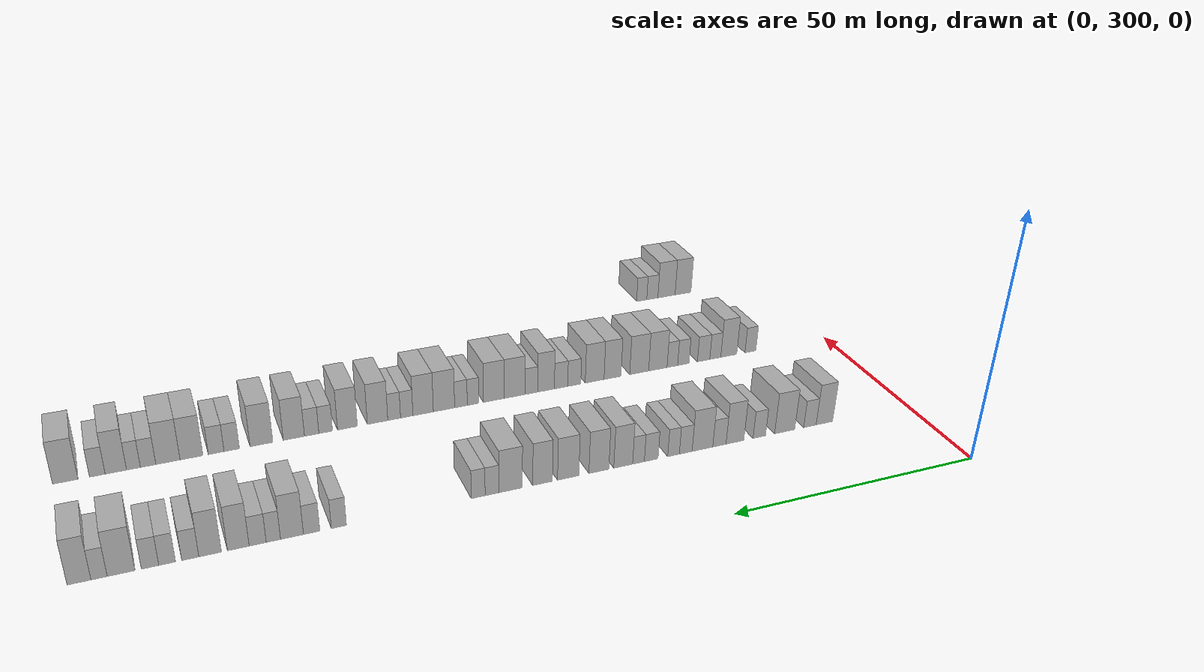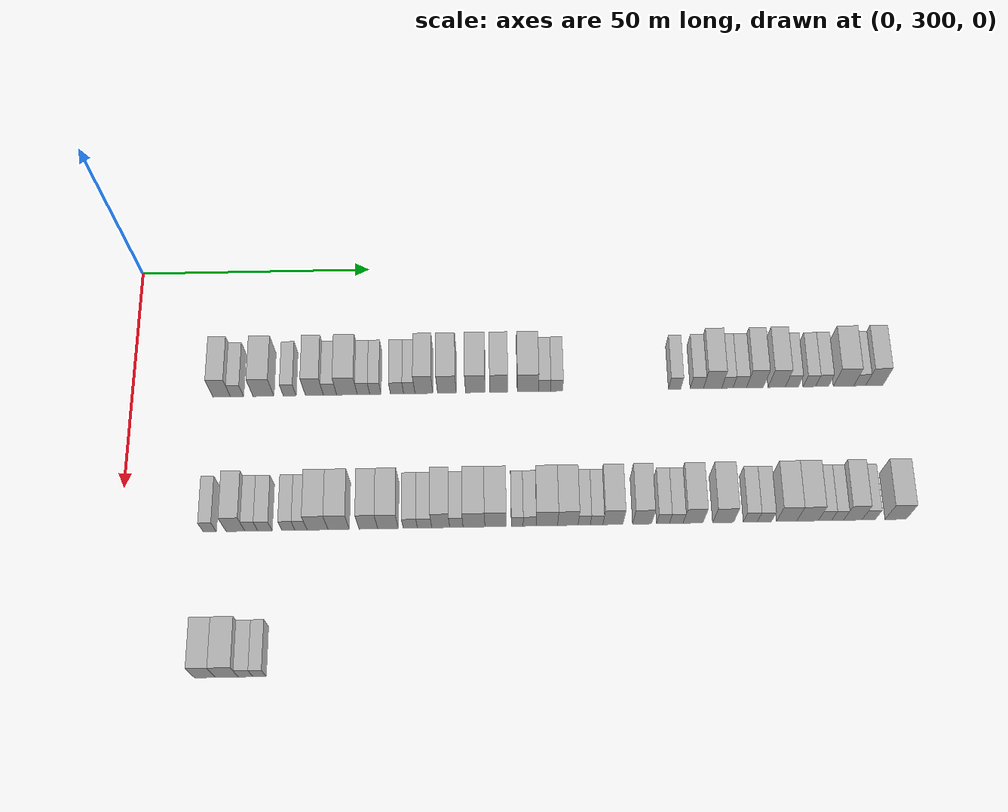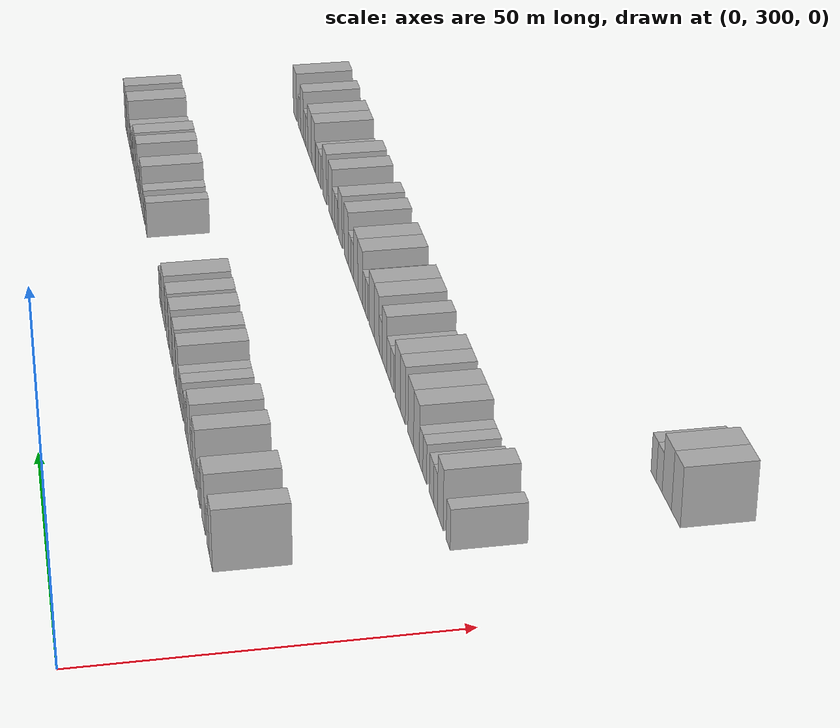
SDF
<sdf version="1.6">
 <world name="default">
  <model name="building_193">
   <static>1</static>
   <pose>25.0000 319.1088 0 0.000000 0.000000 0.000000</pose>
   <link name="link">
    <pose>0 0 4.50 0 0 0</pose>
    <collision name="collision"><geometry><box><size>10.0000 3.7270 9.0000</size></box></geometry></collision>
    <visual name="visual">
     <cast_shadows>0</cast_shadows>
     <geometry><box><size>10.0000 3.7270 9.0000</size></box></geometry>
     <material>
      <script>
       <uri>model://HANNAS_wall/materials/scripts</uri>
       <uri>model://HANNAS_wall/materials/textures</uri>
       <name>vrc/HANNAS_wall</name>
      </script>
     </material>
    </visual>
   </link>
  </model>
  <model name="building_194">
   <static>1</static>
   <pose>25.0000 322.3653 0 0.000000 0.000000 0.000000</pose>
   <link name="link">
    <pose>0 0 3.00 0 0 0</pose>
    <collision name="collision"><geometry><box><size>10.0000 2.7860 6.0000</size></box></geometry></collision>
    <visual name="visual">
     <cast_shadows>0</cast_shadows>
     <geometry><box><size>10.0000 2.7860 6.0000</size></box></geometry>
     <material>
      <script>
       <uri>model://HANNAS_wall/materials/scripts</uri>
       <uri>model://HANNAS_wall/materials/textures</uri>
       <name>vrc/HANNAS_wall</name>
      </script>
     </material>
    </visual>
   </link>
  </model>
  <model name="building_195">
   <static>1</static>
   <pose>25.0000 327.9862 0 0.000000 0.000000 0.000000</pose>
   <link name="link">
    <pose>0 0 4.50 0 0 0</pose>
    <collision name="collision"><geometry><box><size>10.0000 4.4557 9.0000</size></box></geometry></collision>
    <visual name="visual">
     <cast_shadows>0</cast_shadows>
     <geometry><box><size>10.0000 4.4557 9.0000</size></box></geometry>
     <material>
      <script>
       <uri>model://HANNAS_wall/materials/scripts</uri>
       <uri>model://HANNAS_wall/materials/textures</uri>
       <name>vrc/HANNAS_wall</name>
      </script>
     </material>
    </visual>
   </link>
  </model>
  <model name="building_196">
   <static>1</static>
   <pose>25.0000 333.5713 0 0.000000 0.000000 0.000000</pose>
   <link name="link">
    <pose>0 0 3.00 0 0 0</pose>
    <collision name="collision"><geometry><box><size>10.0000 2.7145 6.0000</size></box></geometry></collision>
    <visual name="visual">
     <cast_shadows>0</cast_shadows>
     <geometry><box><size>10.0000 2.7145 6.0000</size></box></geometry>
     <material>
      <script>
       <uri>model://HANNAS_wall/materials/scripts</uri>
       <uri>model://HANNAS_wall/materials/textures</uri>
       <name>vrc/HANNAS_wall</name>
      </script>
     </material>
    </visual>
   </link>
  </model>
  <model name="building_197">
   <static>1</static>
   <pose>25.0000 338.8458 0 0.000000 0.000000 0.000000</pose>
   <link name="link">
    <pose>0 0 4.50 0 0 0</pose>
    <collision name="collision"><geometry><box><size>10.0000 3.8346 9.0000</size></box></geometry></collision>
    <visual name="visual">
     <cast_shadows>0</cast_shadows>
     <geometry><box><size>10.0000 3.8346 9.0000</size></box></geometry>
     <material>
      <script>
       <uri>model://HANNAS_wall/materials/scripts</uri>
       <uri>model://HANNAS_wall/materials/textures</uri>
       <name>vrc/HANNAS_wall</name>
      </script>
     </material>
    </visual>
   </link>
  </model>
  <model name="building_198">
   <static>1</static>
   <pose>25.0000 342.1753 0 0.000000 0.000000 0.000000</pose>
   <link name="link">
    <pose>0 0 3.00 0 0 0</pose>
    <collision name="collision"><geometry><box><size>10.0000 2.8244 6.0000</size></box></geometry></collision>
    <visual name="visual">
     <cast_shadows>0</cast_shadows>
     <geometry><box><size>10.0000 2.8244 6.0000</size></box></geometry>
     <material>
      <script>
       <uri>model://HANNAS_wall/materials/scripts</uri>
       <uri>model://HANNAS_wall/materials/textures</uri>
       <name>vrc/HANNAS_wall</name>
      </script>
     </material>
    </visual>
   </link>
  </model>
  <model name="building_199">
   <static>1</static>
   <pose>25.0000 345.7808 0 0.000000 0.000000 0.000000</pose>
   <link name="link">
    <pose>0 0 4.50 0 0 0</pose>
    <collision name="collision"><geometry><box><size>10.0000 4.3867 9.0000</size></box></geometry></collision>
    <visual name="visual">
     <cast_shadows>0</cast_shadows>
     <geometry><box><size>10.0000 4.3867 9.0000</size></box></geometry>
     <material>
      <script>
       <uri>model://HANNAS_wall/materials/scripts</uri>
       <uri>model://HANNAS_wall/materials/textures</uri>
       <name>vrc/HANNAS_wall</name>
      </script>
     </material>
    </visual>
   </link>
  </model>
  <model name="building_200">
   <static>1</static>
   <pose>25.0000 349.3085 0 0.000000 0.000000 0.000000</pose>
   <link name="link">
    <pose>0 0 3.00 0 0 0</pose>
    <collision name="collision"><geometry><box><size>10.0000 2.6686 6.0000</size></box></geometry></collision>
    <visual name="visual">
     <cast_shadows>0</cast_shadows>
     <geometry><box><size>10.0000 2.6686 6.0000</size></box></geometry>
     <material>
      <script>
       <uri>model://HANNAS_wall/materials/scripts</uri>
       <uri>model://HANNAS_wall/materials/textures</uri>
       <name>vrc/HANNAS_wall</name>
      </script>
     </material>
    </visual>
   </link>
  </model>
  <model name="building_201">
   <static>1</static>
   <pose>25.0000 351.8510 0 0.000000 0.000000 0.000000</pose>
   <link name="link">
    <pose>0 0 3.00 0 0 0</pose>
    <collision name="collision"><geometry><box><size>10.0000 2.4166 6.0000</size></box></geometry></collision>
    <visual name="visual">
     <cast_shadows>0</cast_shadows>
     <geometry><box><size>10.0000 2.4166 6.0000</size></box></geometry>
     <material>
      <script>
       <uri>model://HANNAS_wall/materials/scripts</uri>
       <uri>model://HANNAS_wall/materials/textures</uri>
       <name>vrc/HANNAS_wall</name>
      </script>
     </material>
    </visual>
   </link>
  </model>
  <model name="building_202">
   <static>1</static>
   <pose>25.0000 356.4657 0 0.000000 0.000000 0.000000</pose>
   <link name="link">
    <pose>0 0 3.00 0 0 0</pose>
    <collision name="collision"><geometry><box><size>10.0000 2.8127 6.0000</size></box></geometry></collision>
    <visual name="visual">
     <cast_shadows>0</cast_shadows>
     <geometry><box><size>10.0000 2.8127 6.0000</size></box></geometry>
     <material>
      <script>
       <uri>model://HANNAS_wall/materials/scripts</uri>
       <uri>model://HANNAS_wall/materials/textures</uri>
       <name>vrc/HANNAS_wall</name>
      </script>
     </material>
    </visual>
   </link>
  </model>
  <model name="building_203">
   <static>1</static>
   <pose>25.0000 359.0736 0 0.000000 0.000000 0.000000</pose>
   <link name="link">
    <pose>0 0 3.00 0 0 0</pose>
    <collision name="collision"><geometry><box><size>10.0000 2.4030 6.0000</size></box></geometry></collision>
    <visual name="visual">
     <cast_shadows>0</cast_shadows>
     <geometry><box><size>10.0000 2.4030 6.0000</size></box></geometry>
     <material>
      <script>
       <uri>model://HANNAS_wall/materials/scripts</uri>
       <uri>model://HANNAS_wall/materials/textures</uri>
       <name>vrc/HANNAS_wall</name>
      </script>
     </material>
    </visual>
   </link>
  </model>
  <model name="building_204">
   <static>1</static>
   <pose>25.0000 362.1849 0 0.000000 0.000000 0.000000</pose>
   <link name="link">
    <pose>0 0 4.50 0 0 0</pose>
    <collision name="collision"><geometry><box><size>10.0000 3.8196 9.0000</size></box></geometry></collision>
    <visual name="visual">
     <cast_shadows>0</cast_shadows>
     <geometry><box><size>10.0000 3.8196 9.0000</size></box></geometry>
     <material>
      <script>
       <uri>model://HANNAS_wall/materials/scripts</uri>
       <uri>model://HANNAS_wall/materials/textures</uri>
       <name>vrc/HANNAS_wall</name>
      </script>
     </material>
    </visual>
   </link>
  </model>
  <model name="building_205">
   <static>1</static>
   <pose>25.0000 367.0878 0 0.000000 0.000000 0.000000</pose>
   <link name="link">
    <pose>0 0 4.50 0 0 0</pose>
    <collision name="collision"><geometry><box><size>10.0000 3.9863 9.0000</size></box></geometry></collision>
    <visual name="visual">
     <cast_shadows>0</cast_shadows>
     <geometry><box><size>10.0000 3.9863 9.0000</size></box></geometry>
     <material>
      <script>
       <uri>model://HANNAS_wall/materials/scripts</uri>
       <uri>model://HANNAS_wall/materials/textures</uri>
       <name>vrc/HANNAS_wall</name>
      </script>
     </material>
    </visual>
   </link>
  </model>
  <model name="building_206">
   <static>1</static>
   <pose>25.0000 373.1792 0 0.000000 0.000000 0.000000</pose>
   <link name="link">
    <pose>0 0 4.50 0 0 0</pose>
    <collision name="collision"><geometry><box><size>10.0000 4.1966 9.0000</size></box></geometry></collision>
    <visual name="visual">
     <cast_shadows>0</cast_shadows>
     <geometry><box><size>10.0000 4.1966 9.0000</size></box></geometry>
     <material>
      <script>
       <uri>model://HANNAS_wall/materials/scripts</uri>
       <uri>model://HANNAS_wall/materials/textures</uri>
       <name>vrc/HANNAS_wall</name>
      </script>
     </material>
    </visual>
   </link>
  </model>
  <model name="building_207">
   <static>1</static>
   <pose>25.0000 378.1912 0 0.000000 0.000000 0.000000</pose>
   <link name="link">
    <pose>0 0 4.50 0 0 0</pose>
    <collision name="collision"><geometry><box><size>10.0000 3.8272 9.0000</size></box></geometry></collision>
    <visual name="visual">
     <cast_shadows>0</cast_shadows>
     <geometry><box><size>10.0000 3.8272 9.0000</size></box></geometry>
     <material>
      <script>
       <uri>model://HANNAS_wall/materials/scripts</uri>
       <uri>model://HANNAS_wall/materials/textures</uri>
       <name>vrc/HANNAS_wall</name>
      </script>
     </material>
    </visual>
   </link>
  </model>
  <model name="building_208">
   <static>1</static>
   <pose>25.0000 384.3517 0 0.000000 0.000000 0.000000</pose>
   <link name="link">
    <pose>0 0 4.50 0 0 0</pose>
    <collision name="collision"><geometry><box><size>10.0000 4.4937 9.0000</size></box></geometry></collision>
    <visual name="visual">
     <cast_shadows>0</cast_shadows>
     <geometry><box><size>10.0000 4.4937 9.0000</size></box></geometry>
     <material>
      <script>
       <uri>model://HANNAS_wall/materials/scripts</uri>
       <uri>model://HANNAS_wall/materials/textures</uri>
       <name>vrc/HANNAS_wall</name>
      </script>
     </material>
    </visual>
   </link>
  </model>
  <model name="building_209">
   <static>1</static>
   <pose>25.0000 387.8900 0 0.000000 0.000000 0.000000</pose>
   <link name="link">
    <pose>0 0 3.00 0 0 0</pose>
    <collision name="collision"><geometry><box><size>10.0000 2.5828 6.0000</size></box></geometry></collision>
    <visual name="visual">
     <cast_shadows>0</cast_shadows>
     <geometry><box><size>10.0000 2.5828 6.0000</size></box></geometry>
     <material>
      <script>
       <uri>model://HANNAS_wall/materials/scripts</uri>
       <uri>model://HANNAS_wall/materials/textures</uri>
       <name>vrc/HANNAS_wall</name>
      </script>
     </material>
    </visual>
   </link>
  </model>
  <model name="building_210">
   <static>1</static>
   <pose>25.0000 390.4834 0 0.000000 0.000000 0.000000</pose>
   <link name="link">
    <pose>0 0 3.00 0 0 0</pose>
    <collision name="collision"><geometry><box><size>10.0000 2.6040 6.0000</size></box></geometry></collision>
    <visual name="visual">
     <cast_shadows>0</cast_shadows>
     <geometry><box><size>10.0000 2.6040 6.0000</size></box></geometry>
     <material>
      <script>
       <uri>model://HANNAS_wall/materials/scripts</uri>
       <uri>model://HANNAS_wall/materials/textures</uri>
       <name>vrc/HANNAS_wall</name>
      </script>
     </material>
    </visual>
   </link>
  </model>
  <model name="building_211">
   <static>1</static>
   <pose>25.0000 415.7562 0 0.000000 0.000000 0.000000</pose>
   <link name="link">
    <pose>0 0 3.00 0 0 0</pose>
    <collision name="collision"><geometry><box><size>10.0000 2.6472 6.0000</size></box></geometry></collision>
    <visual name="visual">
     <cast_shadows>0</cast_shadows>
     <geometry><box><size>10.0000 2.6472 6.0000</size></box></geometry>
     <material>
      <script>
       <uri>model://HANNAS_wall/materials/scripts</uri>
       <uri>model://HANNAS_wall/materials/textures</uri>
       <name>vrc/HANNAS_wall</name>
      </script>
     </material>
    </visual>
   </link>
  </model>
  <model name="building_212">
   <static>1</static>
   <pose>25.0000 420.4960 0 0.000000 0.000000 0.000000</pose>
   <link name="link">
    <pose>0 0 3.00 0 0 0</pose>
    <collision name="collision"><geometry><box><size>10.0000 2.8325 6.0000</size></box></geometry></collision>
    <visual name="visual">
     <cast_shadows>0</cast_shadows>
     <geometry><box><size>10.0000 2.8325 6.0000</size></box></geometry>
     <material>
      <script>
       <uri>model://HANNAS_wall/materials/scripts</uri>
       <uri>model://HANNAS_wall/materials/textures</uri>
       <name>vrc/HANNAS_wall</name>
      </script>
     </material>
    </visual>
   </link>
  </model>
  <model name="building_213">
   <static>1</static>
   <pose>25.0000 423.8719 0 0.000000 0.000000 0.000000</pose>
   <link name="link">
    <pose>0 0 4.50 0 0 0</pose>
    <collision name="collision"><geometry><box><size>10.0000 3.9193 9.0000</size></box></geometry></collision>
    <visual name="visual">
     <cast_shadows>0</cast_shadows>
     <geometry><box><size>10.0000 3.9193 9.0000</size></box></geometry>
     <material>
      <script>
       <uri>model://HANNAS_wall/materials/scripts</uri>
       <uri>model://HANNAS_wall/materials/textures</uri>
       <name>vrc/HANNAS_wall</name>
      </script>
     </material>
    </visual>
   </link>
  </model>
  <model name="building_214">
   <static>1</static>
   <pose>25.0000 427.0435 0 0.000000 0.000000 0.000000</pose>
   <link name="link">
    <pose>0 0 3.00 0 0 0</pose>
    <collision name="collision"><geometry><box><size>10.0000 2.4238 6.0000</size></box></geometry></collision>
    <visual name="visual">
     <cast_shadows>0</cast_shadows>
     <geometry><box><size>10.0000 2.4238 6.0000</size></box></geometry>
     <material>
      <script>
       <uri>model://HANNAS_wall/materials/scripts</uri>
       <uri>model://HANNAS_wall/materials/textures</uri>
       <name>vrc/HANNAS_wall</name>
      </script>
     </material>
    </visual>
   </link>
  </model>
  <model name="building_215">
   <static>1</static>
   <pose>25.0000 429.6931 0 0.000000 0.000000 0.000000</pose>
   <link name="link">
    <pose>0 0 3.00 0 0 0</pose>
    <collision name="collision"><geometry><box><size>10.0000 2.8754 6.0000</size></box></geometry></collision>
    <visual name="visual">
     <cast_shadows>0</cast_shadows>
     <geometry><box><size>10.0000 2.8754 6.0000</size></box></geometry>
     <material>
      <script>
       <uri>model://HANNAS_wall/materials/scripts</uri>
       <uri>model://HANNAS_wall/materials/textures</uri>
       <name>vrc/HANNAS_wall</name>
      </script>
     </material>
    </visual>
   </link>
  </model>
  <model name="building_216">
   <static>1</static>
   <pose>25.0000 432.9404 0 0.000000 0.000000 0.000000</pose>
   <link name="link">
    <pose>0 0 4.50 0 0 0</pose>
    <collision name="collision"><geometry><box><size>10.0000 3.6192 9.0000</size></box></geometry></collision>
    <visual name="visual">
     <cast_shadows>0</cast_shadows>
     <geometry><box><size>10.0000 3.6192 9.0000</size></box></geometry>
     <material>
      <script>
       <uri>model://HANNAS_wall/materials/scripts</uri>
       <uri>model://HANNAS_wall/materials/textures</uri>
       <name>vrc/HANNAS_wall</name>
      </script>
     </material>
    </visual>
   </link>
  </model>
  <model name="building_217">
   <static>1</static>
   <pose>25.0000 437.6071 0 0.000000 0.000000 0.000000</pose>
   <link name="link">
    <pose>0 0 4.50 0 0 0</pose>
    <collision name="collision"><geometry><box><size>10.0000 3.7142 9.0000</size></box></geometry></collision>
    <visual name="visual">
     <cast_shadows>0</cast_shadows>
     <geometry><box><size>10.0000 3.7142 9.0000</size></box></geometry>
     <material>
      <script>
       <uri>model://HANNAS_wall/materials/scripts</uri>
       <uri>model://HANNAS_wall/materials/textures</uri>
       <name>vrc/HANNAS_wall</name>
      </script>
     </material>
    </visual>
   </link>
  </model>
  <model name="building_218">
   <static>1</static>
   <pose>25.0000 440.8571 0 0.000000 0.000000 0.000000</pose>
   <link name="link">
    <pose>0 0 3.00 0 0 0</pose>
    <collision name="collision"><geometry><box><size>10.0000 2.7859 6.0000</size></box></geometry></collision>
    <visual name="visual">
     <cast_shadows>0</cast_shadows>
     <geometry><box><size>10.0000 2.7859 6.0000</size></box></geometry>
     <material>
      <script>
       <uri>model://HANNAS_wall/materials/scripts</uri>
       <uri>model://HANNAS_wall/materials/textures</uri>
       <name>vrc/HANNAS_wall</name>
      </script>
     </material>
    </visual>
   </link>
  </model>
  <model name="building_219">
   <static>1</static>
   <pose>25.0000 444.5986 0 0.000000 0.000000 0.000000</pose>
   <link name="link">
    <pose>0 0 3.00 0 0 0</pose>
    <collision name="collision"><geometry><box><size>10.0000 2.6970 6.0000</size></box></geometry></collision>
    <visual name="visual">
     <cast_shadows>0</cast_shadows>
     <geometry><box><size>10.0000 2.6970 6.0000</size></box></geometry>
     <material>
      <script>
       <uri>model://HANNAS_wall/materials/scripts</uri>
       <uri>model://HANNAS_wall/materials/textures</uri>
       <name>vrc/HANNAS_wall</name>
      </script>
     </material>
    </visual>
   </link>
  </model>
  <model name="building_220">
   <static>1</static>
   <pose>25.0000 447.3444 0 0.000000 0.000000 0.000000</pose>
   <link name="link">
    <pose>0 0 3.00 0 0 0</pose>
    <collision name="collision"><geometry><box><size>10.0000 2.7946 6.0000</size></box></geometry></collision>
    <visual name="visual">
     <cast_shadows>0</cast_shadows>
     <geometry><box><size>10.0000 2.7946 6.0000</size></box></geometry>
     <material>
      <script>
       <uri>model://HANNAS_wall/materials/scripts</uri>
       <uri>model://HANNAS_wall/materials/textures</uri>
       <name>vrc/HANNAS_wall</name>
      </script>
     </material>
    </visual>
   </link>
  </model>
  <model name="building_221">
   <static>1</static>
   <pose>25.0000 451.9371 0 0.000000 0.000000 0.000000</pose>
   <link name="link">
    <pose>0 0 4.50 0 0 0</pose>
    <collision name="collision"><geometry><box><size>10.0000 4.3908 9.0000</size></box></geometry></collision>
    <visual name="visual">
     <cast_shadows>0</cast_shadows>
     <geometry><box><size>10.0000 4.3908 9.0000</size></box></geometry>
     <material>
      <script>
       <uri>model://HANNAS_wall/materials/scripts</uri>
       <uri>model://HANNAS_wall/materials/textures</uri>
       <name>vrc/HANNAS_wall</name>
      </script>
     </material>
    </visual>
   </link>
  </model>
  <model name="building_222">
   <static>1</static>
   <pose>25.0000 455.4033 0 0.000000 0.000000 0.000000</pose>
   <link name="link">
    <pose>0 0 3.00 0 0 0</pose>
    <collision name="collision"><geometry><box><size>10.0000 2.5416 6.0000</size></box></geometry></collision>
    <visual name="visual">
     <cast_shadows>0</cast_shadows>
     <geometry><box><size>10.0000 2.5416 6.0000</size></box></geometry>
     <material>
      <script>
       <uri>model://HANNAS_wall/materials/scripts</uri>
       <uri>model://HANNAS_wall/materials/textures</uri>
       <name>vrc/HANNAS_wall</name>
      </script>
     </material>
    </visual>
   </link>
  </model>
  <model name="building_223">
   <static>1</static>
   <pose>25.0000 458.5246 0 0.000000 0.000000 0.000000</pose>
   <link name="link">
    <pose>0 0 4.50 0 0 0</pose>
    <collision name="collision"><geometry><box><size>10.0000 3.7010 9.0000</size></box></geometry></collision>
    <visual name="visual">
     <cast_shadows>0</cast_shadows>
     <geometry><box><size>10.0000 3.7010 9.0000</size></box></geometry>
     <material>
      <script>
       <uri>model://HANNAS_wall/materials/scripts</uri>
       <uri>model://HANNAS_wall/materials/textures</uri>
       <name>vrc/HANNAS_wall</name>
      </script>
     </material>
    </visual>
   </link>
  </model>
  <model name="building_414">
   <static>1</static>
   <pose>55.0000 318.4285 0 0.000000 0.000000 0.000000</pose>
   <link name="link">
    <pose>0 0 3.00 0 0 0</pose>
    <collision name="collision"><geometry><box><size>10.0000 2.6645 6.0000</size></box></geometry></collision>
    <visual name="visual">
     <cast_shadows>0</cast_shadows>
     <geometry><box><size>10.0000 2.6645 6.0000</size></box></geometry>
     <material>
      <script>
       <uri>model://HANNAS_wall/materials/scripts</uri>
       <uri>model://HANNAS_wall/materials/textures</uri>
       <name>vrc/HANNAS_wall</name>
      </script>
     </material>
    </visual>
   </link>
  </model>
  <model name="building_415">
   <static>1</static>
   <pose>55.0000 323.6907 0 0.000000 0.000000 0.000000</pose>
   <link name="link">
    <pose>0 0 4.50 0 0 0</pose>
    <collision name="collision"><geometry><box><size>10.0000 3.8598 9.0000</size></box></geometry></collision>
    <visual name="visual">
     <cast_shadows>0</cast_shadows>
     <geometry><box><size>10.0000 3.8598 9.0000</size></box></geometry>
     <material>
      <script>
       <uri>model://HANNAS_wall/materials/scripts</uri>
       <uri>model://HANNAS_wall/materials/textures</uri>
       <name>vrc/HANNAS_wall</name>
      </script>
     </material>
    </visual>
   </link>
  </model>
  <model name="building_416">
   <static>1</static>
   <pose>55.0000 326.9384 0 0.000000 0.000000 0.000000</pose>
   <link name="link">
    <pose>0 0 3.00 0 0 0</pose>
    <collision name="collision"><geometry><box><size>10.0000 2.6358 6.0000</size></box></geometry></collision>
    <visual name="visual">
     <cast_shadows>0</cast_shadows>
     <geometry><box><size>10.0000 2.6358 6.0000</size></box></geometry>
     <material>
      <script>
       <uri>model://HANNAS_wall/materials/scripts</uri>
       <uri>model://HANNAS_wall/materials/textures</uri>
       <name>vrc/HANNAS_wall</name>
      </script>
     </material>
    </visual>
   </link>
  </model>
  <model name="building_417">
   <static>1</static>
   <pose>55.0000 329.7284 0 0.000000 0.000000 0.000000</pose>
   <link name="link">
    <pose>0 0 3.00 0 0 0</pose>
    <collision name="collision"><geometry><box><size>10.0000 2.9442 6.0000</size></box></geometry></collision>
    <visual name="visual">
     <cast_shadows>0</cast_shadows>
     <geometry><box><size>10.0000 2.9442 6.0000</size></box></geometry>
     <material>
      <script>
       <uri>model://HANNAS_wall/materials/scripts</uri>
       <uri>model://HANNAS_wall/materials/textures</uri>
       <name>vrc/HANNAS_wall</name>
      </script>
     </material>
    </visual>
   </link>
  </model>
  <model name="building_418">
   <static>1</static>
   <pose>55.0000 334.5457 0 0.000000 0.000000 0.000000</pose>
   <link name="link">
    <pose>0 0 3.00 0 0 0</pose>
    <collision name="collision"><geometry><box><size>10.0000 2.6904 6.0000</size></box></geometry></collision>
    <visual name="visual">
     <cast_shadows>0</cast_shadows>
     <geometry><box><size>10.0000 2.6904 6.0000</size></box></geometry>
     <material>
      <script>
       <uri>model://HANNAS_wall/materials/scripts</uri>
       <uri>model://HANNAS_wall/materials/textures</uri>
       <name>vrc/HANNAS_wall</name>
      </script>
     </material>
    </visual>
   </link>
  </model>
  <model name="building_419">
   <static>1</static>
   <pose>55.0000 337.1266 0 0.000000 0.000000 0.000000</pose>
   <link name="link">
    <pose>0 0 3.00 0 0 0</pose>
    <collision name="collision"><geometry><box><size>10.0000 2.4715 6.0000</size></box></geometry></collision>
    <visual name="visual">
     <cast_shadows>0</cast_shadows>
     <geometry><box><size>10.0000 2.4715 6.0000</size></box></geometry>
     <material>
      <script>
       <uri>model://HANNAS_wall/materials/scripts</uri>
       <uri>model://HANNAS_wall/materials/textures</uri>
       <name>vrc/HANNAS_wall</name>
      </script>
     </material>
    </visual>
   </link>
  </model>
  <model name="building_420">
   <static>1</static>
   <pose>55.0000 340.5083 0 0.000000 0.000000 0.000000</pose>
   <link name="link">
    <pose>0 0 4.50 0 0 0</pose>
    <collision name="collision"><geometry><box><size>10.0000 4.2918 9.0000</size></box></geometry></collision>
    <visual name="visual">
     <cast_shadows>0</cast_shadows>
     <geometry><box><size>10.0000 4.2918 9.0000</size></box></geometry>
     <material>
      <script>
       <uri>model://HANNAS_wall/materials/scripts</uri>
       <uri>model://HANNAS_wall/materials/textures</uri>
       <name>vrc/HANNAS_wall</name>
      </script>
     </material>
    </visual>
   </link>
  </model>
  <model name="building_421">
   <static>1</static>
   <pose>55.0000 344.8352 0 0.000000 0.000000 0.000000</pose>
   <link name="link">
    <pose>0 0 4.50 0 0 0</pose>
    <collision name="collision"><geometry><box><size>10.0000 4.3620 9.0000</size></box></geometry></collision>
    <visual name="visual">
     <cast_shadows>0</cast_shadows>
     <geometry><box><size>10.0000 4.3620 9.0000</size></box></geometry>
     <material>
      <script>
       <uri>model://HANNAS_wall/materials/scripts</uri>
       <uri>model://HANNAS_wall/materials/textures</uri>
       <name>vrc/HANNAS_wall</name>
      </script>
     </material>
    </visual>
   </link>
  </model>
  <model name="building_422">
   <static>1</static>
   <pose>55.0000 350.9352 0 0.000000 0.000000 0.000000</pose>
   <link name="link">
    <pose>0 0 4.50 0 0 0</pose>
    <collision name="collision"><geometry><box><size>10.0000 3.8379 9.0000</size></box></geometry></collision>
    <visual name="visual">
     <cast_shadows>0</cast_shadows>
     <geometry><box><size>10.0000 3.8379 9.0000</size></box></geometry>
     <material>
      <script>
       <uri>model://HANNAS_wall/materials/scripts</uri>
       <uri>model://HANNAS_wall/materials/textures</uri>
       <name>vrc/HANNAS_wall</name>
      </script>
     </material>
    </visual>
   </link>
  </model>
  <model name="building_423">
   <static>1</static>
   <pose>55.0000 354.9702 0 0.000000 0.000000 0.000000</pose>
   <link name="link">
    <pose>0 0 4.50 0 0 0</pose>
    <collision name="collision"><geometry><box><size>10.0000 4.2323 9.0000</size></box></geometry></collision>
    <visual name="visual">
     <cast_shadows>0</cast_shadows>
     <geometry><box><size>10.0000 4.2323 9.0000</size></box></geometry>
     <material>
      <script>
       <uri>model://HANNAS_wall/materials/scripts</uri>
       <uri>model://HANNAS_wall/materials/textures</uri>
       <name>vrc/HANNAS_wall</name>
      </script>
     </material>
    </visual>
   </link>
  </model>
  <model name="building_424">
   <static>1</static>
   <pose>55.0000 359.5411 0 0.000000 0.000000 0.000000</pose>
   <link name="link">
    <pose>0 0 3.00 0 0 0</pose>
    <collision name="collision"><geometry><box><size>10.0000 2.9094 6.0000</size></box></geometry></collision>
    <visual name="visual">
     <cast_shadows>0</cast_shadows>
     <geometry><box><size>10.0000 2.9094 6.0000</size></box></geometry>
     <material>
      <script>
       <uri>model://HANNAS_wall/materials/scripts</uri>
       <uri>model://HANNAS_wall/materials/textures</uri>
       <name>vrc/HANNAS_wall</name>
      </script>
     </material>
    </visual>
   </link>
  </model>
  <model name="building_425">
   <static>1</static>
   <pose>55.0000 362.4667 0 0.000000 0.000000 0.000000</pose>
   <link name="link">
    <pose>0 0 3.00 0 0 0</pose>
    <collision name="collision"><geometry><box><size>10.0000 2.9417 6.0000</size></box></geometry></collision>
    <visual name="visual">
     <cast_shadows>0</cast_shadows>
     <geometry><box><size>10.0000 2.9417 6.0000</size></box></geometry>
     <material>
      <script>
       <uri>model://HANNAS_wall/materials/scripts</uri>
       <uri>model://HANNAS_wall/materials/textures</uri>
       <name>vrc/HANNAS_wall</name>
      </script>
     </material>
    </visual>
   </link>
  </model>
  <model name="building_426">
   <static>1</static>
   <pose>55.0000 365.7749 0 0.000000 0.000000 0.000000</pose>
   <link name="link">
    <pose>0 0 4.50 0 0 0</pose>
    <collision name="collision"><geometry><box><size>10.0000 3.6748 9.0000</size></box></geometry></collision>
    <visual name="visual">
     <cast_shadows>0</cast_shadows>
     <geometry><box><size>10.0000 3.6748 9.0000</size></box></geometry>
     <material>
      <script>
       <uri>model://HANNAS_wall/materials/scripts</uri>
       <uri>model://HANNAS_wall/materials/textures</uri>
       <name>vrc/HANNAS_wall</name>
      </script>
     </material>
    </visual>
   </link>
  </model>
  <model name="building_427">
   <static>1</static>
   <pose>55.0000 368.9834 0 0.000000 0.000000 0.000000</pose>
   <link name="link">
    <pose>0 0 3.00 0 0 0</pose>
    <collision name="collision"><geometry><box><size>10.0000 2.7420 6.0000</size></box></geometry></collision>
    <visual name="visual">
     <cast_shadows>0</cast_shadows>
     <geometry><box><size>10.0000 2.7420 6.0000</size></box></geometry>
     <material>
      <script>
       <uri>model://HANNAS_wall/materials/scripts</uri>
       <uri>model://HANNAS_wall/materials/textures</uri>
       <name>vrc/HANNAS_wall</name>
      </script>
     </material>
    </visual>
   </link>
  </model>
  <model name="building_428">
   <static>1</static>
   <pose>55.0000 372.6005 0 0.000000 0.000000 0.000000</pose>
   <link name="link">
    <pose>0 0 4.50 0 0 0</pose>
    <collision name="collision"><geometry><box><size>10.0000 4.4923 9.0000</size></box></geometry></collision>
    <visual name="visual">
     <cast_shadows>0</cast_shadows>
     <geometry><box><size>10.0000 4.4923 9.0000</size></box></geometry>
     <material>
      <script>
       <uri>model://HANNAS_wall/materials/scripts</uri>
       <uri>model://HANNAS_wall/materials/textures</uri>
       <name>vrc/HANNAS_wall</name>
      </script>
     </material>
    </visual>
   </link>
  </model>
  <model name="building_429">
   <static>1</static>
   <pose>55.0000 377.0536 0 0.000000 0.000000 0.000000</pose>
   <link name="link">
    <pose>0 0 4.50 0 0 0</pose>
    <collision name="collision"><geometry><box><size>10.0000 4.4139 9.0000</size></box></geometry></collision>
    <visual name="visual">
     <cast_shadows>0</cast_shadows>
     <geometry><box><size>10.0000 4.4139 9.0000</size></box></geometry>
     <material>
      <script>
       <uri>model://HANNAS_wall/materials/scripts</uri>
       <uri>model://HANNAS_wall/materials/textures</uri>
       <name>vrc/HANNAS_wall</name>
      </script>
     </material>
    </visual>
   </link>
  </model>
  <model name="building_430">
   <static>1</static>
   <pose>55.0000 381.4723 0 0.000000 0.000000 0.000000</pose>
   <link name="link">
    <pose>0 0 3.00 0 0 0</pose>
    <collision name="collision"><geometry><box><size>10.0000 2.4236 6.0000</size></box></geometry></collision>
    <visual name="visual">
     <cast_shadows>0</cast_shadows>
     <geometry><box><size>10.0000 2.4236 6.0000</size></box></geometry>
     <material>
      <script>
       <uri>model://HANNAS_wall/materials/scripts</uri>
       <uri>model://HANNAS_wall/materials/textures</uri>
       <name>vrc/HANNAS_wall</name>
      </script>
     </material>
    </visual>
   </link>
  </model>
  <model name="building_431">
   <static>1</static>
   <pose>55.0000 384.0136 0 0.000000 0.000000 0.000000</pose>
   <link name="link">
    <pose>0 0 3.00 0 0 0</pose>
    <collision name="collision"><geometry><box><size>10.0000 2.6590 6.0000</size></box></geometry></collision>
    <visual name="visual">
     <cast_shadows>0</cast_shadows>
     <geometry><box><size>10.0000 2.6590 6.0000</size></box></geometry>
     <material>
      <script>
       <uri>model://HANNAS_wall/materials/scripts</uri>
       <uri>model://HANNAS_wall/materials/textures</uri>
       <name>vrc/HANNAS_wall</name>
      </script>
     </material>
    </visual>
   </link>
  </model>
  <model name="building_432">
   <static>1</static>
   <pose>55.0000 387.5551 0 0.000000 0.000000 0.000000</pose>
   <link name="link">
    <pose>0 0 4.50 0 0 0</pose>
    <collision name="collision"><geometry><box><size>10.0000 4.4239 9.0000</size></box></geometry></collision>
    <visual name="visual">
     <cast_shadows>0</cast_shadows>
     <geometry><box><size>10.0000 4.4239 9.0000</size></box></geometry>
     <material>
      <script>
       <uri>model://HANNAS_wall/materials/scripts</uri>
       <uri>model://HANNAS_wall/materials/textures</uri>
       <name>vrc/HANNAS_wall</name>
      </script>
     </material>
    </visual>
   </link>
  </model>
  <model name="building_433">
   <static>1</static>
   <pose>55.0000 391.8734 0 0.000000 0.000000 0.000000</pose>
   <link name="link">
    <pose>0 0 4.50 0 0 0</pose>
    <collision name="collision"><geometry><box><size>10.0000 4.2128 9.0000</size></box></geometry></collision>
    <visual name="visual">
     <cast_shadows>0</cast_shadows>
     <geometry><box><size>10.0000 4.2128 9.0000</size></box></geometry>
     <material>
      <script>
       <uri>model://HANNAS_wall/materials/scripts</uri>
       <uri>model://HANNAS_wall/materials/textures</uri>
       <name>vrc/HANNAS_wall</name>
      </script>
     </material>
    </visual>
   </link>
  </model>
  <model name="building_434">
   <static>1</static>
   <pose>55.0000 395.2429 0 0.000000 0.000000 0.000000</pose>
   <link name="link">
    <pose>0 0 3.00 0 0 0</pose>
    <collision name="collision"><geometry><box><size>10.0000 2.5262 6.0000</size></box></geometry></collision>
    <visual name="visual">
     <cast_shadows>0</cast_shadows>
     <geometry><box><size>10.0000 2.5262 6.0000</size></box></geometry>
     <material>
      <script>
       <uri>model://HANNAS_wall/materials/scripts</uri>
       <uri>model://HANNAS_wall/materials/textures</uri>
       <name>vrc/HANNAS_wall</name>
      </script>
     </material>
    </visual>
   </link>
  </model>
  <model name="building_435">
   <static>1</static>
   <pose>55.0000 397.7979 0 0.000000 0.000000 0.000000</pose>
   <link name="link">
    <pose>0 0 3.00 0 0 0</pose>
    <collision name="collision"><geometry><box><size>10.0000 2.5838 6.0000</size></box></geometry></collision>
    <visual name="visual">
     <cast_shadows>0</cast_shadows>
     <geometry><box><size>10.0000 2.5838 6.0000</size></box></geometry>
     <material>
      <script>
       <uri>model://HANNAS_wall/materials/scripts</uri>
       <uri>model://HANNAS_wall/materials/textures</uri>
       <name>vrc/HANNAS_wall</name>
      </script>
     </material>
    </visual>
   </link>
  </model>
  <model name="building_436">
   <static>1</static>
   <pose>55.0000 401.1469 0 0.000000 0.000000 0.000000</pose>
   <link name="link">
    <pose>0 0 4.50 0 0 0</pose>
    <collision name="collision"><geometry><box><size>10.0000 4.1142 9.0000</size></box></geometry></collision>
    <visual name="visual">
     <cast_shadows>0</cast_shadows>
     <geometry><box><size>10.0000 4.1142 9.0000</size></box></geometry>
     <material>
      <script>
       <uri>model://HANNAS_wall/materials/scripts</uri>
       <uri>model://HANNAS_wall/materials/textures</uri>
       <name>vrc/HANNAS_wall</name>
      </script>
     </material>
    </visual>
   </link>
  </model>
  <model name="building_437">
   <static>1</static>
   <pose>55.0000 407.1651 0 0.000000 0.000000 0.000000</pose>
   <link name="link">
    <pose>0 0 4.50 0 0 0</pose>
    <collision name="collision"><geometry><box><size>10.0000 3.9222 9.0000</size></box></geometry></collision>
    <visual name="visual">
     <cast_shadows>0</cast_shadows>
     <geometry><box><size>10.0000 3.9222 9.0000</size></box></geometry>
     <material>
      <script>
       <uri>model://HANNAS_wall/materials/scripts</uri>
       <uri>model://HANNAS_wall/materials/textures</uri>
       <name>vrc/HANNAS_wall</name>
      </script>
     </material>
    </visual>
   </link>
  </model>
  <model name="building_438">
   <static>1</static>
   <pose>55.0000 411.4570 0 0.000000 0.000000 0.000000</pose>
   <link name="link">
    <pose>0 0 3.00 0 0 0</pose>
    <collision name="collision"><geometry><box><size>10.0000 2.6616 6.0000</size></box></geometry></collision>
    <visual name="visual">
     <cast_shadows>0</cast_shadows>
     <geometry><box><size>10.0000 2.6616 6.0000</size></box></geometry>
     <material>
      <script>
       <uri>model://HANNAS_wall/materials/scripts</uri>
       <uri>model://HANNAS_wall/materials/textures</uri>
       <name>vrc/HANNAS_wall</name>
      </script>
     </material>
    </visual>
   </link>
  </model>
  <model name="building_439">
   <static>1</static>
   <pose>55.0000 414.1908 0 0.000000 0.000000 0.000000</pose>
   <link name="link">
    <pose>0 0 3.00 0 0 0</pose>
    <collision name="collision"><geometry><box><size>10.0000 2.8060 6.0000</size></box></geometry></collision>
    <visual name="visual">
     <cast_shadows>0</cast_shadows>
     <geometry><box><size>10.0000 2.8060 6.0000</size></box></geometry>
     <material>
      <script>
       <uri>model://HANNAS_wall/materials/scripts</uri>
       <uri>model://HANNAS_wall/materials/textures</uri>
       <name>vrc/HANNAS_wall</name>
      </script>
     </material>
    </visual>
   </link>
  </model>
  <model name="building_440">
   <static>1</static>
   <pose>55.0000 417.6356 0 0.000000 0.000000 0.000000</pose>
   <link name="link">
    <pose>0 0 4.50 0 0 0</pose>
    <collision name="collision"><geometry><box><size>10.0000 4.0837 9.0000</size></box></geometry></collision>
    <visual name="visual">
     <cast_shadows>0</cast_shadows>
     <geometry><box><size>10.0000 4.0837 9.0000</size></box></geometry>
     <material>
      <script>
       <uri>model://HANNAS_wall/materials/scripts</uri>
       <uri>model://HANNAS_wall/materials/textures</uri>
       <name>vrc/HANNAS_wall</name>
      </script>
     </material>
    </visual>
   </link>
  </model>
  <model name="building_441">
   <static>1</static>
   <pose>55.0000 423.8455 0 0.000000 0.000000 0.000000</pose>
   <link name="link">
    <pose>0 0 4.50 0 0 0</pose>
    <collision name="collision"><geometry><box><size>10.0000 4.3362 9.0000</size></box></geometry></collision>
    <visual name="visual">
     <cast_shadows>0</cast_shadows>
     <geometry><box><size>10.0000 4.3362 9.0000</size></box></geometry>
     <material>
      <script>
       <uri>model://HANNAS_wall/materials/scripts</uri>
       <uri>model://HANNAS_wall/materials/textures</uri>
       <name>vrc/HANNAS_wall</name>
      </script>
     </material>
    </visual>
   </link>
  </model>
  <model name="building_442">
   <static>1</static>
   <pose>55.0000 429.4548 0 0.000000 0.000000 0.000000</pose>
   <link name="link">
    <pose>0 0 3.00 0 0 0</pose>
    <collision name="collision"><geometry><box><size>10.0000 2.8824 6.0000</size></box></geometry></collision>
    <visual name="visual">
     <cast_shadows>0</cast_shadows>
     <geometry><box><size>10.0000 2.8824 6.0000</size></box></geometry>
     <material>
      <script>
       <uri>model://HANNAS_wall/materials/scripts</uri>
       <uri>model://HANNAS_wall/materials/textures</uri>
       <name>vrc/HANNAS_wall</name>
      </script>
     </material>
    </visual>
   </link>
  </model>
  <model name="building_443">
   <static>1</static>
   <pose>55.0000 432.3584 0 0.000000 0.000000 0.000000</pose>
   <link name="link">
    <pose>0 0 3.00 0 0 0</pose>
    <collision name="collision"><geometry><box><size>10.0000 2.9247 6.0000</size></box></geometry></collision>
    <visual name="visual">
     <cast_shadows>0</cast_shadows>
     <geometry><box><size>10.0000 2.9247 6.0000</size></box></geometry>
     <material>
      <script>
       <uri>model://HANNAS_wall/materials/scripts</uri>
       <uri>model://HANNAS_wall/materials/textures</uri>
       <name>vrc/HANNAS_wall</name>
      </script>
     </material>
    </visual>
   </link>
  </model>
  <model name="building_444">
   <static>1</static>
   <pose>55.0000 436.9179 0 0.000000 0.000000 0.000000</pose>
   <link name="link">
    <pose>0 0 4.50 0 0 0</pose>
    <collision name="collision"><geometry><box><size>10.0000 4.1944 9.0000</size></box></geometry></collision>
    <visual name="visual">
     <cast_shadows>0</cast_shadows>
     <geometry><box><size>10.0000 4.1944 9.0000</size></box></geometry>
     <material>
      <script>
       <uri>model://HANNAS_wall/materials/scripts</uri>
       <uri>model://HANNAS_wall/materials/textures</uri>
       <name>vrc/HANNAS_wall</name>
      </script>
     </material>
    </visual>
   </link>
  </model>
  <model name="building_445">
   <static>1</static>
   <pose>55.0000 441.2170 0 0.000000 0.000000 0.000000</pose>
   <link name="link">
    <pose>0 0 4.50 0 0 0</pose>
    <collision name="collision"><geometry><box><size>10.0000 4.4039 9.0000</size></box></geometry></collision>
    <visual name="visual">
     <cast_shadows>0</cast_shadows>
     <geometry><box><size>10.0000 4.4039 9.0000</size></box></geometry>
     <material>
      <script>
       <uri>model://HANNAS_wall/materials/scripts</uri>
       <uri>model://HANNAS_wall/materials/textures</uri>
       <name>vrc/HANNAS_wall</name>
      </script>
     </material>
    </visual>
   </link>
  </model>
  <model name="building_446">
   <static>1</static>
   <pose>55.0000 444.8077 0 0.000000 0.000000 0.000000</pose>
   <link name="link">
    <pose>0 0 3.00 0 0 0</pose>
    <collision name="collision"><geometry><box><size>10.0000 2.7775 6.0000</size></box></geometry></collision>
    <visual name="visual">
     <cast_shadows>0</cast_shadows>
     <geometry><box><size>10.0000 2.7775 6.0000</size></box></geometry>
     <material>
      <script>
       <uri>model://HANNAS_wall/materials/scripts</uri>
       <uri>model://HANNAS_wall/materials/textures</uri>
       <name>vrc/HANNAS_wall</name>
      </script>
     </material>
    </visual>
   </link>
  </model>
  <model name="building_447">
   <static>1</static>
   <pose>55.0000 447.4312 0 0.000000 0.000000 0.000000</pose>
   <link name="link">
    <pose>0 0 3.00 0 0 0</pose>
    <collision name="collision"><geometry><box><size>10.0000 2.4694 6.0000</size></box></geometry></collision>
    <visual name="visual">
     <cast_shadows>0</cast_shadows>
     <geometry><box><size>10.0000 2.4694 6.0000</size></box></geometry>
     <material>
      <script>
       <uri>model://HANNAS_wall/materials/scripts</uri>
       <uri>model://HANNAS_wall/materials/textures</uri>
       <name>vrc/HANNAS_wall</name>
      </script>
     </material>
    </visual>
   </link>
  </model>
  <model name="building_448">
   <static>1</static>
   <pose>55.0000 450.5668 0 0.000000 0.000000 0.000000</pose>
   <link name="link">
    <pose>0 0 4.50 0 0 0</pose>
    <collision name="collision"><geometry><box><size>10.0000 3.8019 9.0000</size></box></geometry></collision>
    <visual name="visual">
     <cast_shadows>0</cast_shadows>
     <geometry><box><size>10.0000 3.8019 9.0000</size></box></geometry>
     <material>
      <script>
       <uri>model://HANNAS_wall/materials/scripts</uri>
       <uri>model://HANNAS_wall/materials/textures</uri>
       <name>vrc/HANNAS_wall</name>
      </script>
     </material>
    </visual>
   </link>
  </model>
  <model name="building_449">
   <static>1</static>
   <pose>55.0000 453.8438 0 0.000000 0.000000 0.000000</pose>
   <link name="link">
    <pose>0 0 3.00 0 0 0</pose>
    <collision name="collision"><geometry><box><size>10.0000 2.7522 6.0000</size></box></geometry></collision>
    <visual name="visual">
     <cast_shadows>0</cast_shadows>
     <geometry><box><size>10.0000 2.7522 6.0000</size></box></geometry>
     <material>
      <script>
       <uri>model://HANNAS_wall/materials/scripts</uri>
       <uri>model://HANNAS_wall/materials/textures</uri>
       <name>vrc/HANNAS_wall</name>
      </script>
     </material>
    </visual>
   </link>
  </model>
  <model name="building_450">
   <static>1</static>
   <pose>55.0000 459.4276 0 0.000000 0.000000 0.000000</pose>
   <link name="link">
    <pose>0 0 4.50 0 0 0</pose>
    <collision name="collision"><geometry><box><size>10.0000 4.4154 9.0000</size></box></geometry></collision>
    <visual name="visual">
     <cast_shadows>0</cast_shadows>
     <geometry><box><size>10.0000 4.4154 9.0000</size></box></geometry>
     <material>
      <script>
       <uri>model://HANNAS_wall/materials/scripts</uri>
       <uri>model://HANNAS_wall/materials/textures</uri>
       <name>vrc/HANNAS_wall</name>
      </script>
     </material>
    </visual>
   </link>
  </model>
  <model name="building_642">
   <static>1</static>
   <pose>85.0000 319.3682 0 0.000000 0.000000 0.000000</pose>
   <link name="link">
    <pose>0 0 4.50 0 0 0</pose>
    <collision name="collision"><geometry><box><size>10.0000 4.1524 9.0000</size></box></geometry></collision>
    <visual name="visual">
     <cast_shadows>0</cast_shadows>
     <geometry><box><size>10.0000 4.1524 9.0000</size></box></geometry>
     <material>
      <script>
       <uri>model://HANNAS_wall/materials/scripts</uri>
       <uri>model://HANNAS_wall/materials/textures</uri>
       <name>vrc/HANNAS_wall</name>
      </script>
     </material>
    </visual>
   </link>
  </model>
  <model name="building_643">
   <static>1</static>
   <pose>85.0000 323.6767 0 0.000000 0.000000 0.000000</pose>
   <link name="link">
    <pose>0 0 4.50 0 0 0</pose>
    <collision name="collision"><geometry><box><size>10.0000 4.4646 9.0000</size></box></geometry></collision>
    <visual name="visual">
     <cast_shadows>0</cast_shadows>
     <geometry><box><size>10.0000 4.4646 9.0000</size></box></geometry>
     <material>
      <script>
       <uri>model://HANNAS_wall/materials/scripts</uri>
       <uri>model://HANNAS_wall/materials/textures</uri>
       <name>vrc/HANNAS_wall</name>
      </script>
     </material>
    </visual>
   </link>
  </model>
  <model name="building_644">
   <static>1</static>
   <pose>85.0000 327.3431 0 0.000000 0.000000 0.000000</pose>
   <link name="link">
    <pose>0 0 3.00 0 0 0</pose>
    <collision name="collision"><geometry><box><size>10.0000 2.8683 6.0000</size></box></geometry></collision>
    <visual name="visual">
     <cast_shadows>0</cast_shadows>
     <geometry><box><size>10.0000 2.8683 6.0000</size></box></geometry>
     <material>
      <script>
       <uri>model://HANNAS_wall/materials/scripts</uri>
       <uri>model://HANNAS_wall/materials/textures</uri>
       <name>vrc/HANNAS_wall</name>
      </script>
     </material>
    </visual>
   </link>
  </model>
  <model name="building_645">
   <static>1</static>
   <pose>85.0000 330.0767 0 0.000000 0.000000 0.000000</pose>
   <link name="link">
    <pose>0 0 3.00 0 0 0</pose>
    <collision name="collision"><geometry><box><size>10.0000 2.5989 6.0000</size></box></geometry></collision>
    <visual name="visual">
     <cast_shadows>0</cast_shadows>
     <geometry><box><size>10.0000 2.5989 6.0000</size></box></geometry>
     <material>
      <script>
       <uri>model://HANNAS_wall/materials/scripts</uri>
       <uri>model://HANNAS_wall/materials/textures</uri>
       <name>vrc/HANNAS_wall</name>
      </script>
     </material>
    </visual>
   </link>
  </model>
 </world>
</sdf>
